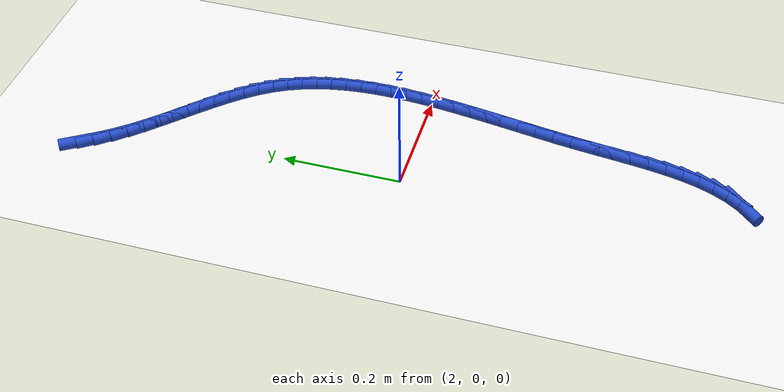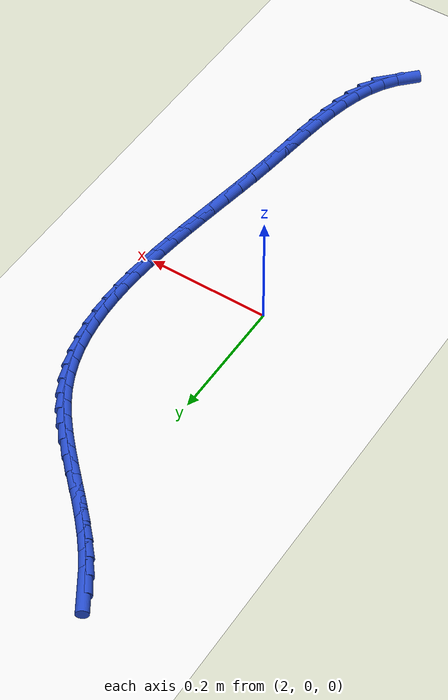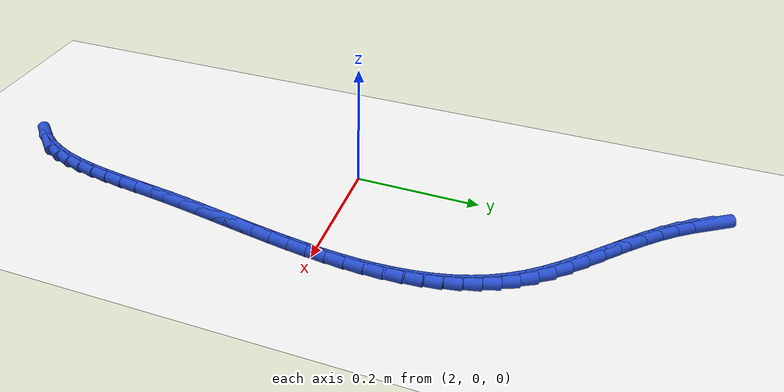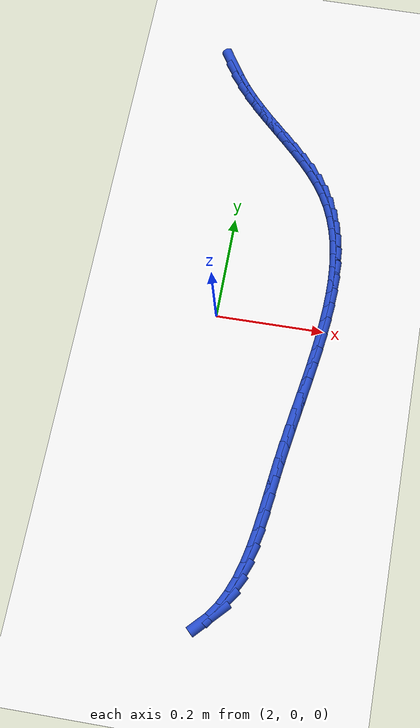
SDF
<sdf version="1.6">
 <world name="default">
  <model name="ground_plane">
   <static>1</static>
   <link name="link">
    <collision name="collision">
     <geometry><plane><normal>0 0 1</normal><size>100 100</size></plane></geometry>
     <surface><friction><ode><mu>100</mu><mu2>50</mu2></ode></friction></surface>
    </collision>
    <visual name="visual">
     <cast_shadows>0</cast_shadows>
     <geometry><plane><normal>0 0 1</normal><size>100 100</size></plane></geometry>
     <material>
      <script><uri>file://media/materials/scripts/gazebo.material</uri><name>Gazebo/WhiteGlow</name></script>
     </material>
    </visual>
   </link>
  </model>
  <model name="line">
   <link name="link_104">
    <pose>1.938701153469305 0.5331836576661113 0.01 0 1.57 -1.0027623030553932</pose>
    <collision name="collision">
     <geometry><cylinder><radius>0.01</radius><length>0.08</length></cylinder></geometry>
    </collision>
    <visual name="visual">
     <material>
      <script><name>Gazebo/Blue</name><uri>file://media/materials/scripts/gazebo.material</uri></script>
     </material>
     <geometry><cylinder><radius>0.01</radius><length>0.08</length></cylinder></geometry>
    </visual>
   </link>
   <link name="link_105">
    <pose>1.95361507805251 0.5098148658826085 0.01 0 1.57 -0.9419899139697636</pose>
    <collision name="collision">
     <geometry><cylinder><radius>0.01</radius><length>0.08</length></cylinder></geometry>
    </collision>
    <visual name="visual">
     <material>
      <script><name>Gazebo/Blue</name><uri>file://media/materials/scripts/gazebo.material</uri></script>
     </material>
     <geometry><cylinder><radius>0.01</radius><length>0.08</length></cylinder></geometry>
    </visual>
   </link>
   <link name="link_106">
    <pose>1.969996037692172 0.4872915258691639 0.01 0 1.57 -0.8789616196129737</pose>
    <collision name="collision">
     <geometry><cylinder><radius>0.01</radius><length>0.08</length></cylinder></geometry>
    </collision>
    <visual name="visual">
     <material>
      <script><name>Gazebo/Blue</name><uri>file://media/materials/scripts/gazebo.material</uri></script>
     </material>
     <geometry><cylinder><radius>0.01</radius><length>0.08</length></cylinder></geometry>
    </visual>
   </link>
   <link name="link_107">
    <pose>1.9879996825098296 0.4655591551772365 0.01 0 1.57 -0.8282208937337646</pose>
    <collision name="collision">
     <geometry><cylinder><radius>0.01</radius><length>0.08</length></cylinder></geometry>
    </collision>
    <visual name="visual">
     <material>
      <script><name>Gazebo/Blue</name><uri>file://media/materials/scripts/gazebo.material</uri></script>
     </material>
     <geometry><cylinder><radius>0.01</radius><length>0.08</length></cylinder></geometry>
    </visual>
   </link>
   <link name="link_108">
    <pose>2.0073521117737756 0.4444740197165348 0.01 0 1.57 -0.7939366253925281</pose>
    <collision name="collision">
     <geometry><cylinder><radius>0.01</radius><length>0.08</length></cylinder></geometry>
    </collision>
    <visual name="visual">
     <material>
      <script><name>Gazebo/Blue</name><uri>file://media/materials/scripts/gazebo.material</uri></script>
     </material>
     <geometry><cylinder><radius>0.01</radius><length>0.08</length></cylinder></geometry>
    </visual>
   </link>
   <link name="link_109">
    <pose>2.0276181785671854 0.4238588818275418 0.01 0 1.57 -0.7751266450777974</pose>
    <collision name="collision">
     <geometry><cylinder><radius>0.01</radius><length>0.08</length></cylinder></geometry>
    </collision>
    <visual name="visual">
     <material>
      <script><name>Gazebo/Blue</name><uri>file://media/materials/scripts/gazebo.material</uri></script>
     </material>
     <geometry><cylinder><radius>0.01</radius><length>0.08</length></cylinder></geometry>
    </visual>
   </link>
   <link name="link_110">
    <pose>2.0483624485415595 0.40353644412847745 0.01 0 1.57 -0.7712506253116056</pose>
    <collision name="collision">
     <geometry><cylinder><radius>0.01</radius><length>0.08</length></cylinder></geometry>
    </collision>
    <visual name="visual">
     <material>
      <script><name>Gazebo/Blue</name><uri>file://media/materials/scripts/gazebo.material</uri></script>
     </material>
     <geometry><cylinder><radius>0.01</radius><length>0.08</length></cylinder></geometry>
    </visual>
   </link>
   <link name="link_111">
    <pose>2.0691494873483993 0.3833294092375626 0.01 0 1.57 -0.7823132337479165</pose>
    <collision name="collision">
     <geometry><cylinder><radius>0.01</radius><length>0.08</length></cylinder></geometry>
    </collision>
    <visual name="visual">
     <material>
      <script><name>Gazebo/Blue</name><uri>file://media/materials/scripts/gazebo.material</uri></script>
     </material>
     <geometry><cylinder><radius>0.01</radius><length>0.08</length></cylinder></geometry>
    </visual>
   </link>
   <link name="link_112">
    <pose>2.089543860639204 0.3630604797730171 0.01 0 1.57 -0.8088963257406372</pose>
    <collision name="collision">
     <geometry><cylinder><radius>0.01</radius><length>0.08</length></cylinder></geometry>
    </collision>
    <visual name="visual">
     <material>
      <script><name>Gazebo/Blue</name><uri>file://media/materials/scripts/gazebo.material</uri></script>
     </material>
     <geometry><cylinder><radius>0.01</radius><length>0.08</length></cylinder></geometry>
    </visual>
   </link>
   <link name="link_113">
    <pose>2.109110134065473 0.342552358353061 0.01 0 1.57 -0.8521367463158239</pose>
    <collision name="collision">
     <geometry><cylinder><radius>0.01</radius><length>0.08</length></cylinder></geometry>
    </collision>
    <visual name="visual">
     <material>
      <script><name>Gazebo/Blue</name><uri>file://media/materials/scripts/gazebo.material</uri></script>
     </material>
     <geometry><cylinder><radius>0.01</radius><length>0.08</length></cylinder></geometry>
    </visual>
   </link>
   <link name="link_114">
    <pose>2.127412873278709 0.3216277475959149 0.01 0 1.57 -0.9136088259030778</pose>
    <collision name="collision">
     <geometry><cylinder><radius>0.01</radius><length>0.08</length></cylinder></geometry>
    </collision>
    <visual name="visual">
     <material>
      <script><name>Gazebo/Blue</name><uri>file://media/materials/scripts/gazebo.material</uri></script>
     </material>
     <geometry><cylinder><radius>0.01</radius><length>0.08</length></cylinder></geometry>
    </visual>
   </link>
   <link name="link_115">
    <pose>2.1440166439304105 0.30010935011979883 0.01 0 1.57 -0.9947433718464301</pose>
    <collision name="collision">
     <geometry><cylinder><radius>0.01</radius><length>0.08</length></cylinder></geometry>
    </collision>
    <visual name="visual">
     <material>
      <script><name>Gazebo/Blue</name><uri>file://media/materials/scripts/gazebo.material</uri></script>
     </material>
     <geometry><cylinder><radius>0.01</radius><length>0.08</length></cylinder></geometry>
    </visual>
   </link>
   <link name="link_116">
    <pose>2.158492906764785 0.27782246163585317 0.01 0 1.57 -1.0866630975958156</pose>
    <collision name="collision">
     <geometry><cylinder><radius>0.01</radius><length>0.08</length></cylinder></geometry>
    </collision>
    <visual name="visual">
     <material>
      <script><name>Gazebo/Blue</name><uri>file://media/materials/scripts/gazebo.material</uri></script>
     </material>
     <geometry><cylinder><radius>0.01</radius><length>0.08</length></cylinder></geometry>
    </visual>
   </link>
   <link name="link_117">
    <pose>2.170660181962137 0.25468529148260455 0.01 0 1.57 -1.1758016428896825</pose>
    <collision name="collision">
     <geometry><cylinder><radius>0.01</radius><length>0.08</length></cylinder></geometry>
    </collision>
    <visual name="visual">
     <material>
      <script><name>Gazebo/Blue</name><uri>file://media/materials/scripts/gazebo.material</uri></script>
     </material>
     <geometry><cylinder><radius>0.01</radius><length>0.08</length></cylinder></geometry>
    </visual>
   </link>
   <link name="link_118">
    <pose>2.1806462890119556 0.2307323696751677 0.01 0 1.57 -1.2596367557850878</pose>
    <collision name="collision">
     <geometry><cylinder><radius>0.01</radius><length>0.08</length></cylinder></geometry>
    </collision>
    <visual name="visual">
     <material>
      <script><name>Gazebo/Blue</name><uri>file://media/materials/scripts/gazebo.material</uri></script>
     </material>
     <geometry><cylinder><radius>0.01</radius><length>0.08</length></cylinder></geometry>
    </visual>
   </link>
   <link name="link_119">
    <pose>2.188598587788763 0.20600557493827532 0.01 0 1.57 -1.336895767288887</pose>
    <collision name="collision">
     <geometry><cylinder><radius>0.01</radius><length>0.08</length></cylinder></geometry>
    </collision>
    <visual name="visual">
     <material>
      <script><name>Gazebo/Blue</name><uri>file://media/materials/scripts/gazebo.material</uri></script>
     </material>
     <geometry><cylinder><radius>0.01</radius><length>0.08</length></cylinder></geometry>
    </visual>
   </link>
   <link name="link_120">
    <pose>2.194664438167085 0.18054678599666074 0.01 0 1.57 -1.406815823240268</pose>
    <collision name="collision">
     <geometry><cylinder><radius>0.01</radius><length>0.08</length></cylinder></geometry>
    </collision>
    <visual name="visual">
     <material>
      <script><name>Gazebo/Blue</name><uri>file://media/materials/scripts/gazebo.material</uri></script>
     </material>
     <geometry><cylinder><radius>0.01</radius><length>0.08</length></cylinder></geometry>
    </visual>
   </link>
   <link name="link_121">
    <pose>2.198991200021445 0.1543978815750562 0.01 0 1.57 -1.4690841688289857</pose>
    <collision name="collision">
     <geometry><cylinder><radius>0.01</radius><length>0.08</length></cylinder></geometry>
    </collision>
    <visual name="visual">
     <material>
      <script><name>Gazebo/Blue</name><uri>file://media/materials/scripts/gazebo.material</uri></script>
     </material>
     <geometry><cylinder><radius>0.01</radius><length>0.08</length></cylinder></geometry>
    </visual>
   </link>
   <link name="link_122">
    <pose>2.201726233226369 0.12760074039819483 0.01 0 1.57 -1.5237325799157633</pose>
    <collision name="collision">
     <geometry><cylinder><radius>0.01</radius><length>0.08</length></cylinder></geometry>
    </collision>
    <visual name="visual">
     <material>
      <script><name>Gazebo/Blue</name><uri>file://media/materials/scripts/gazebo.material</uri></script>
     </material>
     <geometry><cylinder><radius>0.01</radius><length>0.08</length></cylinder></geometry>
    </visual>
   </link>
   <link name="link_123">
    <pose>2.203016897656381 0.1001972411908096 0.01 0 1.57 1.5705694791425708</pose>
    <collision name="collision">
     <geometry><cylinder><radius>0.01</radius><length>0.08</length></cylinder></geometry>
    </collision>
    <visual name="visual">
     <material>
      <script><name>Gazebo/Blue</name><uri>file://media/materials/scripts/gazebo.material</uri></script>
     </material>
     <geometry><cylinder><radius>0.01</radius><length>0.08</length></cylinder></geometry>
    </visual>
   </link>
   <link name="link_124">
    <pose>2.2030105531860062 0.0722292626776334 0.01 0 1.57 1.5302439832045376</pose>
    <collision name="collision">
     <geometry><cylinder><radius>0.01</radius><length>0.08</length></cylinder></geometry>
    </collision>
    <visual name="visual">
     <material>
      <script><name>Gazebo/Blue</name><uri>file://media/materials/scripts/gazebo.material</uri></script>
     </material>
     <geometry><cylinder><radius>0.01</radius><length>0.08</length></cylinder></geometry>
    </visual>
   </link>
   <link name="link_125">
    <pose>2.2018545596897674 0.043738683583399066 0.01 0 1.57 1.4964364219817785</pose>
    <collision name="collision">
     <geometry><cylinder><radius>0.01</radius><length>0.08</length></cylinder></geometry>
    </collision>
    <visual name="visual">
     <material>
      <script><name>Gazebo/Blue</name><uri>file://media/materials/scripts/gazebo.material</uri></script>
     </material>
     <geometry><cylinder><radius>0.01</radius><length>0.08</length></cylinder></geometry>
    </visual>
   </link>
   <link name="link_126">
    <pose>2.199696277042191 0.014767382632839578 0.01 0 1.57 1.4686977243363522</pose>
    <collision name="collision">
     <geometry><cylinder><radius>0.01</radius><length>0.08</length></cylinder></geometry>
    </collision>
    <visual name="visual">
     <material>
      <script><name>Gazebo/Blue</name><uri>file://media/materials/scripts/gazebo.material</uri></script>
     </material>
     <geometry><cylinder><radius>0.01</radius><length>0.08</length></cylinder></geometry>
    </visual>
   </link>
   <link name="link_127">
    <pose>2.1966830651178 -0.014642761449312265 0.01 0 1.57 1.4466100425949306</pose>
    <collision name="collision">
     <geometry><cylinder><radius>0.01</radius><length>0.08</length></cylinder></geometry>
    </collision>
    <visual name="visual">
     <material>
      <script><name>Gazebo/Blue</name><uri>file://media/materials/scripts/gazebo.material</uri></script>
     </material>
     <geometry><cylinder><radius>0.01</radius><length>0.08</length></cylinder></geometry>
    </visual>
   </link>
   <link name="link_128">
    <pose>2.192962283791121 -0.04444986993832353 0.01 0 1.57 1.42980569427291</pose>
    <collision name="collision">
     <geometry><cylinder><radius>0.01</radius><length>0.08</length></cylinder></geometry>
    </collision>
    <visual name="visual">
     <material>
      <script><name>Gazebo/Blue</name><uri>file://media/materials/scripts/gazebo.material</uri></script>
     </material>
     <geometry><cylinder><radius>0.01</radius><length>0.08</length></cylinder></geometry>
    </visual>
   </link>
   <link name="link_129">
    <pose>2.188681292936676 -0.07461206410946128 0.01 0 1.57 1.417976560002277</pose>
    <collision name="collision">
     <geometry><cylinder><radius>0.01</radius><length>0.08</length></cylinder></geometry>
    </collision>
    <visual name="visual">
     <material>
      <script><name>Gazebo/Blue</name><uri>file://media/materials/scripts/gazebo.material</uri></script>
     </material>
     <geometry><cylinder><radius>0.01</radius><length>0.08</length></cylinder></geometry>
    </visual>
   </link>
   <link name="link_130">
    <pose>2.183987452428992 -0.1050874652379927 0.01 0 1.57 1.4108774854511543</pose>
    <collision name="collision">
     <geometry><cylinder><radius>0.01</radius><length>0.08</length></cylinder></geometry>
    </collision>
    <visual name="visual">
     <material>
      <script><name>Gazebo/Blue</name><uri>file://media/materials/scripts/gazebo.material</uri></script>
     </material>
     <geometry><cylinder><radius>0.01</radius><length>0.08</length></cylinder></geometry>
    </visual>
   </link>
   <link name="link_131">
    <pose>2.1790281221425922 -0.13583419459918486 0.01 0 1.57 1.408326140763812</pose>
    <collision name="collision">
     <geometry><cylinder><radius>0.01</radius><length>0.08</length></cylinder></geometry>
    </collision>
    <visual name="visual">
     <material>
      <script><name>Gazebo/Blue</name><uri>file://media/materials/scripts/gazebo.material</uri></script>
     </material>
     <geometry><cylinder><radius>0.01</radius><length>0.08</length></cylinder></geometry>
    </visual>
   </link>
   <link name="link_132">
    <pose>2.173950661952001 -0.16681037346830482 0.01 0 1.57 1.4102008909202266</pose>
    <collision name="collision">
     <geometry><cylinder><radius>0.01</radius><length>0.08</length></cylinder></geometry>
    </collision>
    <visual name="visual">
     <material>
      <script><name>Gazebo/Blue</name><uri>file://media/materials/scripts/gazebo.material</uri></script>
     </material>
     <geometry><cylinder><radius>0.01</radius><length>0.08</length></cylinder></geometry>
    </visual>
   </link>
   <link name="link_133">
    <pose>2.168902431731743 -0.19797412312061977 0.01 0 1.57 1.416437548191695</pose>
    <collision name="collision">
     <geometry><cylinder><radius>0.01</radius><length>0.08</length></cylinder></geometry>
    </collision>
    <visual name="visual">
     <material>
      <script><name>Gazebo/Blue</name><uri>file://media/materials/scripts/gazebo.material</uri></script>
     </material>
     <geometry><cylinder><radius>0.01</radius><length>0.08</length></cylinder></geometry>
    </visual>
   </link>
   <link name="link_134">
    <pose>2.164030791356344 -0.22928356483139678 0.01 0 1.57 1.4270253719795063</pose>
    <collision name="collision">
     <geometry><cylinder><radius>0.01</radius><length>0.08</length></cylinder></geometry>
    </collision>
    <visual name="visual">
     <material>
      <script><name>Gazebo/Blue</name><uri>file://media/materials/scripts/gazebo.material</uri></script>
     </material>
     <geometry><cylinder><radius>0.01</radius><length>0.08</length></cylinder></geometry>
    </visual>
   </link>
   <link name="link_135">
    <pose>2.159483100700327 -0.260696819875903 0.01 0 1.57 1.4412673406488075</pose>
    <collision name="collision">
     <geometry><cylinder><radius>0.01</radius><length>0.08</length></cylinder></geometry>
    </collision>
    <visual name="visual">
     <material>
      <script><name>Gazebo/Blue</name><uri>file://media/materials/scripts/gazebo.material</uri></script>
     </material>
     <geometry><cylinder><radius>0.01</radius><length>0.08</length></cylinder></geometry>
    </visual>
   </link>
   <link name="link_136">
    <pose>2.155384439293295 -0.2921624688532565 0.01 0 1.57 1.4497334078173523</pose>
    <collision name="collision">
     <geometry><cylinder><radius>0.01</radius><length>0.08</length></cylinder></geometry>
    </collision>
    <visual name="visual">
     <material>
      <script><name>Gazebo/Blue</name><uri>file://media/materials/scripts/gazebo.material</uri></script>
     </material>
     <geometry><cylinder><radius>0.01</radius><length>0.08</length></cylinder></geometry>
    </visual>
   </link>
   <link name="link_137">
    <pose>2.1515713109593766 -0.32350552123475435 0.01 0 1.57 1.4457279452059115</pose>
    <collision name="collision">
     <geometry><cylinder><radius>0.01</radius><length>0.08</length></cylinder></geometry>
    </collision>
    <visual name="visual">
     <material>
      <script><name>Gazebo/Blue</name><uri>file://media/materials/scripts/gazebo.material</uri></script>
     </material>
     <geometry><cylinder><radius>0.01</radius><length>0.08</length></cylinder></geometry>
    </visual>
   </link>
   <link name="link_138">
    <pose>2.147678967051877 -0.35446480808399955 0.01 0 1.57 1.4285747370959632</pose>
    <collision name="collision">
     <geometry><cylinder><radius>0.01</radius><length>0.08</length></cylinder></geometry>
    </collision>
    <visual name="visual">
     <material>
      <script><name>Gazebo/Blue</name><uri>file://media/materials/scripts/gazebo.material</uri></script>
     </material>
     <geometry><cylinder><radius>0.01</radius><length>0.08</length></cylinder></geometry>
    </visual>
   </link>
   <link name="link_139">
    <pose>2.1433385574500177 -0.38477740417060213 0.01 0 1.57 1.3971611635404586</pose>
    <collision name="collision">
     <geometry><cylinder><radius>0.01</radius><length>0.08</length></cylinder></geometry>
    </collision>
    <visual name="visual">
     <material>
      <script><name>Gazebo/Blue</name><uri>file://media/materials/scripts/gazebo.material</uri></script>
     </material>
     <geometry><cylinder><radius>0.01</radius><length>0.08</length></cylinder></geometry>
    </visual>
   </link>
   <link name="link_140">
    <pose>2.1381812320330207 -0.41418038426417186 0.01 0 1.57 1.3497771673577263</pose>
    <collision name="collision">
     <geometry><cylinder><radius>0.01</radius><length>0.08</length></cylinder></geometry>
    </collision>
    <visual name="visual">
     <material>
      <script><name>Gazebo/Blue</name><uri>file://media/materials/scripts/gazebo.material</uri></script>
     </material>
     <geometry><cylinder><radius>0.01</radius><length>0.08</length></cylinder></geometry>
    </visual>
   </link>
   <link name="link_141">
    <pose>2.1318381406801072 -0.44241082313431845 0.01 0 1.57 1.284166779873322</pose>
    <collision name="collision">
     <geometry><cylinder><radius>0.01</radius><length>0.08</length></cylinder></geometry>
    </collision>
    <visual name="visual">
     <material>
      <script><name>Gazebo/Blue</name><uri>file://media/materials/scripts/gazebo.material</uri></script>
     </material>
     <geometry><cylinder><radius>0.01</radius><length>0.08</length></cylinder></geometry>
    </visual>
   </link>
   <link name="link_142">
    <pose>2.1239404332704983 -0.4692057955506517 0.01 0 1.57 1.1977819138957353</pose>
    <collision name="collision">
     <geometry><cylinder><radius>0.01</radius><length>0.08</length></cylinder></geometry>
    </collision>
    <visual name="visual">
     <material>
      <script><name>Gazebo/Blue</name><uri>file://media/materials/scripts/gazebo.material</uri></script>
     </material>
     <geometry><cylinder><radius>0.01</radius><length>0.08</length></cylinder></geometry>
    </visual>
   </link>
   <link name="link_143">
    <pose>2.114119259683417 -0.49430237628278156 0.01 0 1.57 1.0884520129882431</pose>
    <collision name="collision">
     <geometry><cylinder><radius>0.01</radius><length>0.08</length></cylinder></geometry>
    </collision>
    <visual name="visual">
     <material>
      <script><name>Gazebo/Blue</name><uri>file://media/materials/scripts/gazebo.material</uri></script>
     </material>
     <geometry><cylinder><radius>0.01</radius><length>0.08</length></cylinder></geometry>
    </visual>
   </link>
   <link name="link_144">
    <pose>2.102005769798084 -0.5174376401003178 0.01 0 1.57 0.955688734222769</pose>
    <collision name="collision">
     <geometry><cylinder><radius>0.01</radius><length>0.08</length></cylinder></geometry>
    </collision>
    <visual name="visual">
     <material>
      <script><name>Gazebo/Blue</name><uri>file://media/materials/scripts/gazebo.material</uri></script>
     </material>
     <geometry><cylinder><radius>0.01</radius><length>0.08</length></cylinder></geometry>
    </visual>
   </link>
   <link name="link_145">
    <pose>2.087231113493721 -0.5383486617728693 0.01 0 1.57 0.8032056978478539</pose>
    <collision name="collision">
     <geometry><cylinder><radius>0.01</radius><length>0.08</length></cylinder></geometry>
    </collision>
    <visual name="visual">
     <material>
      <script><name>Gazebo/Blue</name><uri>file://media/materials/scripts/gazebo.material</uri></script>
     </material>
     <geometry><cylinder><radius>0.01</radius><length>0.08</length></cylinder></geometry>
    </visual>
   </link>
  </model>
 </world>
</sdf>
